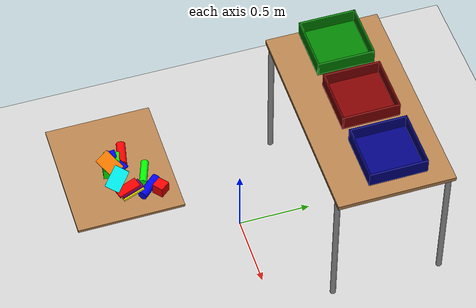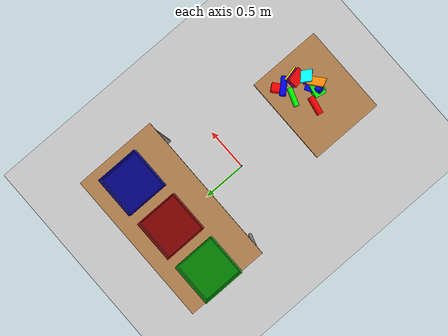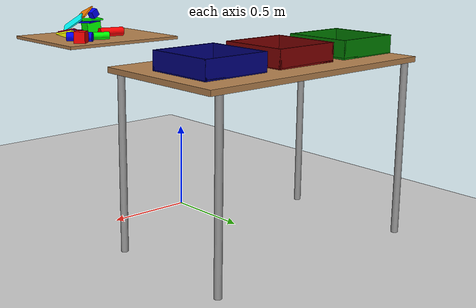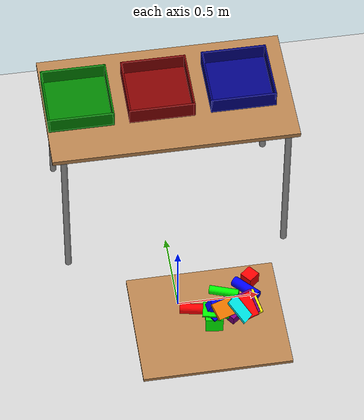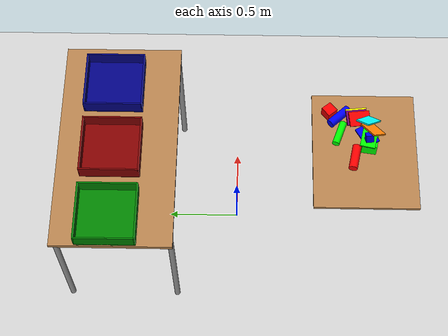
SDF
<sdf version="1.7">
 <world name="default">
  <light name="sun" type="directional">
   <pose>0 0 10 0 -0 0</pose>
   <diffuse>0.8 0.8 0.8 1</diffuse>
   <specular>0.2 0.2 0.2 1</specular>
   <attenuation>
    <range>1000</range>
    <constant>0.9</constant>
    <linear>0.01</linear>
    <quadratic>0.001</quadratic>
   </attenuation>
   <direction>-0.5 0.1 -0.9</direction>
   <spot><inner_angle>0</inner_angle><outer_angle>0</outer_angle><falloff>0</falloff></spot>
  </light>
  <model name="ground_plane">
   <static>1</static>
   <link name="link">
    <collision name="collision">
     <geometry><plane><normal>0 0 1</normal><size>100 100</size></plane></geometry>
     <surface><friction><ode><mu>100</mu><mu2>50</mu2></ode></friction></surface>
    </collision>
    <visual name="visual">
     <cast_shadows>0</cast_shadows>
     <geometry><plane><normal>0 0 1</normal><size>100 100</size></plane></geometry>
     <material>
      <script><uri>file://media/materials/scripts/gazebo.material</uri><name>Gazebo/Grey</name></script>
     </material>
    </visual>
   </link>
  </model>
  <gravity>0 0 -9.8</gravity>
  <magnetic_field>6e-06 2.3e-05 -4.2e-05</magnetic_field>
  <atmosphere type="adiabatic"/>
  <physics type="ode">
   <max_step_size>0.001</max_step_size>
   <real_time_factor>1</real_time_factor>
   <real_time_update_rate>1000</real_time_update_rate>
  </physics>
  <scene><ambient>0.4 0.4 0.4 1</ambient><background>0.7 0.7 0.7 1</background><shadows>1</shadows></scene>
  <audio><device>default</device></audio>
  <spherical_coordinates>
   <surface_model>EARTH_WGS84</surface_model>
   <latitude_deg>0</latitude_deg>
   <longitude_deg>0</longitude_deg>
   <elevation>0</elevation>
   <heading_deg>0</heading_deg>
  </spherical_coordinates>
  <model name="table">
   <static>1</static>
   <link name="link">
    <collision name="surface">
     <pose>0 0 1 0 -0 0</pose>
     <geometry><box><size>1.5 0.8 0.03</size></box></geometry>
     <surface>
      <friction><ode><mu>10</mu><mu2>5</mu2></ode></friction>
      <contact><ode><soft_cfm>0.0001</soft_cfm><soft_erp>0.4</soft_erp><kp>1e+06</kp><kd>10</kd></ode></contact>
     </surface>
    </collision>
    <visual name="visual1">
     <pose>0 0 1 0 -0 0</pose>
     <geometry><box><size>1.5 0.8 0.03</size></box></geometry>
     <material>
      <script><uri>file://media/materials/scripts/gazebo.material</uri><name>Gazebo/Wood</name></script>
     </material>
    </visual>
    <collision name="front_left_leg">
     <pose>0.68 0.38 0.5 0 -0 0</pose>
     <geometry><cylinder><radius>0.02</radius><length>1</length></cylinder></geometry>
    </collision>
    <visual name="front_left_leg">
     <pose>0.68 0.38 0.5 0 -0 0</pose>
     <geometry><cylinder><radius>0.02</radius><length>1</length></cylinder></geometry>
     <material>
      <script><uri>file://media/materials/scripts/gazebo.material</uri><name>Gazebo/Grey</name></script>
     </material>
    </visual>
    <collision name="front_right_leg">
     <pose>0.68 -0.38 0.5 0 -0 0</pose>
     <geometry><cylinder><radius>0.02</radius><length>1</length></cylinder></geometry>
    </collision>
    <visual name="front_right_leg">
     <pose>0.68 -0.38 0.5 0 -0 0</pose>
     <geometry><cylinder><radius>0.02</radius><length>1</length></cylinder></geometry>
     <material>
      <script><uri>file://media/materials/scripts/gazebo.material</uri><name>Gazebo/Grey</name></script>
     </material>
    </visual>
    <collision name="back_right_leg">
     <pose>-0.68 -0.38 0.5 0 -0 0</pose>
     <geometry><cylinder><radius>0.02</radius><length>1</length></cylinder></geometry>
    </collision>
    <visual name="back_right_leg">
     <pose>-0.68 -0.38 0.5 0 -0 0</pose>
     <geometry><cylinder><radius>0.02</radius><length>1</length></cylinder></geometry>
     <material>
      <script><uri>file://media/materials/scripts/gazebo.material</uri><name>Gazebo/Grey</name></script>
     </material>
    </visual>
    <collision name="back_left_leg">
     <pose>-0.68 0.38 0.5 0 -0 0</pose>
     <geometry><cylinder><radius>0.02</radius><length>1</length></cylinder></geometry>
    </collision>
    <visual name="back_left_leg">
     <pose>-0.68 0.38 0.5 0 -0 0</pose>
     <geometry><cylinder><radius>0.02</radius><length>1</length></cylinder></geometry>
     <material>
      <script><uri>file://media/materials/scripts/gazebo.material</uri><name>Gazebo/Grey</name></script>
     </material>
    </visual>
    <inertial>
     <inertia><ixx>1</ixx><ixy>0</ixy><ixz>0</ixz><iyy>1</iyy><iyz>0</iyz><izz>1</izz></inertia>
     <mass>50</mass>
    </inertial>
   </link>
   <pose>0.056083 0.801191 -1.2e-05 0 -0 2.5e-05</pose>
  </model>
  <plugin name="gazebo_link_attacher" filename="libgazebo_link_attacher.so"/>
  <plugin name="gazebo_ros_state" filename="libgazebo_ros_state.so">
   <namespace>/gazebo</namespace>
   <update_rate>100</update_rate>
  </plugin>
  <model name="cube_b">
   <link name="link_2">
    <inertial>
     <mass>2</mass>
     <inertia>
      <ixx>0.00083333</ixx>
      <ixy>0</ixy>
      <ixz>0</ixz>
      <iyy>0.00083333</iyy>
      <iyz>0</iyz>
      <izz>0.00083333</izz>
     </inertia>
    </inertial>
    <visual name="visual">
     <geometry><box><size>0.05 0.05 0.05</size></box></geometry>
     <material>
      <lighting>1</lighting>
      <script><uri>file://media/materials/scripts/gazebo.material</uri><name>Gazebo/Grey</name></script>
      <ambient>0 0 1 1</ambient>
      <diffuse>0 0 1 1</diffuse>
      <specular>0 0 0 1</specular>
      <emissive>0 0 0 1</emissive>
      <shader type="vertex"><normal_map>__default__</normal_map></shader>
     </material>
    </visual>
    <collision name="collision">
     <geometry><box><size>0.05 0.05 0.05</size></box></geometry>
     <surface>
      <friction>
       <ode><mu>0.8</mu><mu2>0.8</mu2><fdir1>0 0 0</fdir1><slip1>0</slip1><slip2>0</slip2></ode>
       <torsional>
        <coefficient>1</coefficient>
        <patch_radius>0</patch_radius>
        <surface_radius>0</surface_radius>
        <use_patch_radius>1</use_patch_radius>
        <ode><slip>0</slip></ode>
       </torsional>
      </friction>
      <bounce><restitution_coefficient>0</restitution_coefficient><threshold>1e+06</threshold></bounce>
      <contact>
       <collide_without_contact>0</collide_without_contact>
       <collide_without_contact_bitmask>1</collide_without_contact_bitmask>
       <collide_bitmask>1</collide_bitmask>
       <ode>
        <soft_cfm>0.0001</soft_cfm>
        <soft_erp>0.4</soft_erp>
        <kp>1e+06</kp>
        <kd>10</kd>
        <max_vel>0.01</max_vel>
        <min_depth>0</min_depth>
       </ode>
      </contact>
     </surface>
    </collision>
   </link>
   <static>0</static>
   <allow_auto_disable>0</allow_auto_disable>
   <pose>0.058084 -0.875418 1.13944 -0.009114 -0.55049 -3.00865</pose>
  </model>
  <model name="cube_g">
   <link name="link_2">
    <inertial>
     <mass>2</mass>
     <inertia>
      <ixx>0.00333333</ixx>
      <iyy>0.00333333</iyy>
      <izz>0.00333333</izz>
      <ixy>0</ixy>
      <ixz>0</ixz>
      <iyz>0</iyz>
     </inertia>
    </inertial>
    <visual name="visual">
     <geometry><box><size>0.1 0.1 0.1</size></box></geometry>
     <material>
      <lighting>1</lighting>
      <script><uri>file://media/materials/scripts/gazebo.material</uri><name>Gazebo/Grey</name></script>
      <ambient>0 1 0 1</ambient>
      <diffuse>0 1 0 1</diffuse>
      <specular>0 0 0 1</specular>
      <emissive>0 0 0 1</emissive>
      <shader type="vertex"><normal_map>__default__</normal_map></shader>
     </material>
    </visual>
    <collision name="collision">
     <geometry><box><size>0.1 0.1 0.1</size></box></geometry>
     <surface>
      <friction>
       <ode><mu>0.8</mu><mu2>0.8</mu2><fdir1>0 0 0</fdir1><slip1>0</slip1><slip2>0</slip2></ode>
       <torsional>
        <coefficient>1</coefficient>
        <patch_radius>0</patch_radius>
        <surface_radius>0</surface_radius>
        <use_patch_radius>1</use_patch_radius>
        <ode><slip>0</slip></ode>
       </torsional>
      </friction>
      <bounce><restitution_coefficient>0</restitution_coefficient><threshold>1e+06</threshold></bounce>
      <contact>
       <collide_without_contact>0</collide_without_contact>
       <collide_without_contact_bitmask>1</collide_without_contact_bitmask>
       <collide_bitmask>1</collide_bitmask>
       <ode>
        <soft_cfm>0.0001</soft_cfm>
        <soft_erp>0.4</soft_erp>
        <kp>1e+06</kp>
        <kd>10</kd>
        <max_vel>0.01</max_vel>
        <min_depth>0</min_depth>
       </ode>
      </contact>
     </surface>
    </collision>
   </link>
   <static>0</static>
   <allow_auto_disable>0</allow_auto_disable>
   <pose>0.068757 -0.890367 1.03563 0.000934 -0.000773 -0.146609</pose>
  </model>
  <model name="cube_r">
   <link name="link_2">
    <inertial>
     <mass>2</mass>
     <inertia>
      <ixx>0.001875</ixx>
      <ixy>0</ixy>
      <ixz>0</ixz>
      <iyy>0.001875</iyy>
      <iyz>0</iyz>
      <izz>0.001875</izz>
     </inertia>
    </inertial>
    <visual name="visual">
     <geometry><box><size>0.075 0.075 0.075</size></box></geometry>
     <material>
      <lighting>1</lighting>
      <script><uri>file://media/materials/scripts/gazebo.material</uri><name>Gazebo/Grey</name></script>
      <ambient>1 0 0 1</ambient>
      <diffuse>1 0 0 1</diffuse>
      <specular>0 0 0 1</specular>
      <emissive>0 0 0 1</emissive>
      <shader type="vertex"><normal_map>__default__</normal_map></shader>
     </material>
    </visual>
    <collision name="collision">
     <geometry><box><size>0.075 0.075 0.075</size></box></geometry>
     <surface>
      <friction>
       <ode><mu>0.8</mu><mu2>0.8</mu2><fdir1>0 0 0</fdir1><slip1>0</slip1><slip2>0</slip2></ode>
       <torsional>
        <coefficient>1</coefficient>
        <patch_radius>0</patch_radius>
        <surface_radius>0</surface_radius>
        <use_patch_radius>1</use_patch_radius>
        <ode><slip>0</slip></ode>
       </torsional>
      </friction>
      <bounce><restitution_coefficient>0</restitution_coefficient><threshold>1e+06</threshold></bounce>
      <contact>
       <collide_without_contact>0</collide_without_contact>
       <collide_without_contact_bitmask>1</collide_without_contact_bitmask>
       <collide_bitmask>1</collide_bitmask>
       <ode>
        <soft_cfm>0.0001</soft_cfm>
        <soft_erp>0.4</soft_erp>
        <kp>1e+06</kp>
        <kd>10</kd>
        <max_vel>0.01</max_vel>
        <min_depth>0</min_depth>
       </ode>
      </contact>
     </surface>
    </collision>
   </link>
   <static>0</static>
   <allow_auto_disable>0</allow_auto_disable>
   <pose>0.317185 -0.625575 1.02465 1.56904 -0.003902 0.686267</pose>
  </model>
  <model name="cylinder_r">
   <link name="link_0">
    <inertial>
     <mass>0.2</mass>
     <inertia>
      <ixx>0.0005267</ixx>
      <ixy>0</ixy>
      <ixz>0</ixz>
      <iyy>0.0005267</iyy>
      <iyz>0</iyz>
      <izz>9e-05</izz>
     </inertia>
    </inertial>
    <visual name="visual">
     <geometry><cylinder><radius>0.03</radius><length>0.17</length></cylinder></geometry>
     <material>
      <lighting>1</lighting>
      <script><uri>file://media/materials/scripts/gazebo.material</uri><name>Gazebo/Grey</name></script>
      <ambient>1 0 0 1</ambient>
      <diffuse>1 0 0 1</diffuse>
      <specular>0 0 0 1</specular>
      <emissive>0 0 0 1</emissive>
      <shader type="vertex"><normal_map>__default__</normal_map></shader>
     </material>
    </visual>
    <collision name="collision">
     <geometry><cylinder><radius>0.03</radius><length>0.17</length></cylinder></geometry>
     <surface>
      <friction>
       <ode><mu>0.5</mu><mu2>0.5</mu2><fdir1>0 0 0</fdir1><slip1>0</slip1><slip2>0</slip2></ode>
       <torsional>
        <coefficient>1</coefficient>
        <patch_radius>0</patch_radius>
        <surface_radius>0</surface_radius>
        <use_patch_radius>1</use_patch_radius>
        <ode><slip>0</slip></ode>
       </torsional>
      </friction>
      <bounce><restitution_coefficient>0</restitution_coefficient><threshold>1e+06</threshold></bounce>
      <contact>
       <collide_without_contact>0</collide_without_contact>
       <collide_without_contact_bitmask>1</collide_without_contact_bitmask>
       <collide_bitmask>1</collide_bitmask>
       <ode>
        <soft_cfm>0.0001</soft_cfm>
        <soft_erp>0.4</soft_erp>
        <kp>1e+06</kp>
        <kd>10</kd>
        <max_vel>0.01</max_vel>
        <min_depth>0</min_depth>
       </ode>
      </contact>
     </surface>
    </collision>
   </link>
   <static>0</static>
   <allow_auto_disable>0</allow_auto_disable>
   <pose>-0.027271 -0.791052 1.01554 1.58234 -1.23015 -1.77818</pose>
  </model>
  <model name="cylinder_b">
   <link name="link_0">
    <inertial>
     <mass>0.2</mass>
     <inertia>
      <ixx>0.0005267</ixx>
      <ixy>0</ixy>
      <ixz>0</ixz>
      <iyy>0.0005267</iyy>
      <iyz>0</iyz>
      <izz>9e-05</izz>
     </inertia>
    </inertial>
    <visual name="visual">
     <geometry><cylinder><radius>0.03</radius><length>0.17</length></cylinder></geometry>
     <material>
      <lighting>1</lighting>
      <ambient>0 0 1 1</ambient>
      <diffuse>0 0 1 1</diffuse>
      <specular>0.1 0.1 0.1 1</specular>
      <emissive>0 0 0 1</emissive>
      <shader type="vertex"><normal_map>__default__</normal_map></shader>
     </material>
    </visual>
    <collision name="collision">
     <geometry><cylinder><radius>0.03</radius><length>0.17</length></cylinder></geometry>
     <surface>
      <friction>
       <ode><mu>0.4</mu><mu2>0.4</mu2><fdir1>0 0 0</fdir1><slip1>0</slip1><slip2>0</slip2></ode>
       <torsional>
        <coefficient>1</coefficient>
        <patch_radius>0</patch_radius>
        <surface_radius>0</surface_radius>
        <use_patch_radius>1</use_patch_radius>
        <ode><slip>0</slip></ode>
       </torsional>
      </friction>
      <bounce><restitution_coefficient>0</restitution_coefficient><threshold>1e+06</threshold></bounce>
      <contact>
       <collide_without_contact>0</collide_without_contact>
       <collide_without_contact_bitmask>1</collide_without_contact_bitmask>
       <collide_bitmask>1</collide_bitmask>
       <ode>
        <soft_cfm>0.0001</soft_cfm>
        <soft_erp>0.4</soft_erp>
        <kp>1e+06</kp>
        <kd>10</kd>
        <max_vel>0.01</max_vel>
        <min_depth>0</min_depth>
       </ode>
      </contact>
     </surface>
    </collision>
   </link>
   <static>0</static>
   <allow_auto_disable>0</allow_auto_disable>
   <pose>0.284132 -0.692404 1.01689 -1.56914 -0.139838 -2.39607</pose>
  </model>
  <model name="cylinder_g">
   <link name="link_0">
    <inertial>
     <mass>0.2</mass>
     <inertia>
      <ixx>0.0005129</ixx>
      <ixy>0</ixy>
      <ixz>0</ixz>
      <iyy>0.0005129</iyy>
      <iyz>0</iyz>
      <izz>6.25e-05</izz>
     </inertia>
    </inertial>
    <visual name="visual">
     <geometry><cylinder><radius>0.025</radius><length>0.17</length></cylinder></geometry>
     <material>
      <lighting>1</lighting>
      <ambient>0 1 0 1</ambient>
      <diffuse>0 1 0 1</diffuse>
      <specular>0.1 0.1 0.1 1</specular>
      <emissive>0 0 0 1</emissive>
      <shader type="vertex"><normal_map>__default__</normal_map></shader>
     </material>
    </visual>
    <collision name="collision">
     <geometry><cylinder><radius>0.025</radius><length>0.17</length></cylinder></geometry>
     <surface>
      <friction>
       <ode><mu>0.5</mu><mu2>0.5</mu2><fdir1>0 0 0</fdir1><slip1>0</slip1><slip2>0</slip2></ode>
       <torsional>
        <coefficient>1</coefficient>
        <patch_radius>0</patch_radius>
        <surface_radius>0</surface_radius>
        <use_patch_radius>1</use_patch_radius>
        <ode><slip>0</slip></ode>
       </torsional>
      </friction>
      <bounce><restitution_coefficient>0</restitution_coefficient><threshold>1e+06</threshold></bounce>
      <contact>
       <collide_without_contact>0</collide_without_contact>
       <collide_without_contact_bitmask>1</collide_without_contact_bitmask>
       <collide_bitmask>1</collide_bitmask>
       <ode>
        <soft_cfm>0.0001</soft_cfm>
        <soft_erp>0.4</soft_erp>
        <kp>1e+06</kp>
        <kd>10</kd>
        <max_vel>0.01</max_vel>
        <min_depth>0</min_depth>
       </ode>
      </contact>
     </surface>
    </collision>
   </link>
   <static>0</static>
   <allow_auto_disable>0</allow_auto_disable>
   <pose>0.156876 -0.692772 1.01141 1.56599 -0.742867 1.23365</pose>
  </model>
  <model name="cuboid_r">
   <link name="link">
    <inertial>
     <mass>2</mass>
     <inertia>
      <ixx>0.001683</ixx>
      <iyy>0.003767</iyy>
      <izz>0.005417</izz>
      <ixy>0</ixy>
      <ixz>0</ixz>
      <iyz>0</iyz>
     </inertia>
    </inertial>
    <visual name="visual">
     <geometry><box><size>0.15 0.1 0.01</size></box></geometry>
     <material><ambient>1 0 0 1</ambient><diffuse>1 0 0 1</diffuse><specular>0.1 0.1 0.1 1</specular></material>
    </visual>
    <collision name="collision">
     <geometry><box><size>0.15 0.1 0.01</size></box></geometry>
     <surface>
      <friction>
       <ode><mu>0.6</mu><mu2>0.6</mu2><fdir1>0 0 0</fdir1><slip1>0</slip1><slip2>0</slip2></ode>
       <torsional>
        <coefficient>1</coefficient>
        <patch_radius>0</patch_radius>
        <surface_radius>0</surface_radius>
        <use_patch_radius>1</use_patch_radius>
        <ode><slip>0</slip></ode>
       </torsional>
      </friction>
      <bounce><restitution_coefficient>0</restitution_coefficient><threshold>1e+06</threshold></bounce>
      <contact>
       <collide_without_contact>0</collide_without_contact>
       <collide_without_contact_bitmask>1</collide_without_contact_bitmask>
       <collide_bitmask>1</collide_bitmask>
       <ode>
        <soft_cfm>0.0001</soft_cfm>
        <soft_erp>0.4</soft_erp>
        <kp>1e+06</kp>
        <kd>10</kd>
        <max_vel>0.01</max_vel>
        <min_depth>0</min_depth>
       </ode>
      </contact>
     </surface>
    </collision>
   </link>
   <static>0</static>
   <allow_auto_disable>0</allow_auto_disable>
   <pose>0.262492 -0.829601 1.03012 2.78633 -0.203152 1.79583</pose>
  </model>
  <model name="cuboid_g">
   <link name="link">
    <inertial>
     <mass>2</mass>
     <inertia>
      <ixx>0.001683</ixx>
      <iyy>0.003767</iyy>
      <izz>0.005417</izz>
      <ixy>0</ixy>
      <ixz>0</ixz>
      <iyz>0</iyz>
     </inertia>
    </inertial>
    <visual name="visual">
     <geometry><box><size>0.15 0.1 0.01</size></box></geometry>
     <material><ambient>0 1 0 1</ambient><diffuse>0 1 0 1</diffuse><specular>0.1 0.1 0.1 1</specular></material>
    </visual>
    <collision name="collision">
     <geometry><box><size>0.15 0.1 0.01</size></box></geometry>
     <surface>
      <friction>
       <ode><mu>0.6</mu><mu2>0.6</mu2><fdir1>0 0 0</fdir1><slip1>0</slip1><slip2>0</slip2></ode>
       <torsional>
        <coefficient>1</coefficient>
        <patch_radius>0</patch_radius>
        <surface_radius>0</surface_radius>
        <use_patch_radius>1</use_patch_radius>
        <ode><slip>0</slip></ode>
       </torsional>
      </friction>
      <bounce><restitution_coefficient>0</restitution_coefficient><threshold>1e+06</threshold></bounce>
      <contact>
       <collide_without_contact>0</collide_without_contact>
       <collide_without_contact_bitmask>1</collide_without_contact_bitmask>
       <collide_bitmask>1</collide_bitmask>
       <ode>
        <soft_cfm>0.0001</soft_cfm>
        <soft_erp>0.4</soft_erp>
        <kp>1e+06</kp>
        <kd>10</kd>
        <max_vel>0.01</max_vel>
        <min_depth>0</min_depth>
       </ode>
      </contact>
     </surface>
    </collision>
   </link>
   <static>0</static>
   <allow_auto_disable>0</allow_auto_disable>
   <pose>0.079682 -0.880348 1.10023 -0.001204 0.006329 -0.216461</pose>
  </model>
  <model name="cuboid_b">
   <link name="link">
    <inertial>
     <mass>2</mass>
     <inertia>
      <ixx>0.001683</ixx>
      <iyy>0.003767</iyy>
      <izz>0.005417</izz>
      <ixy>0</ixy>
      <ixz>0</ixz>
      <iyz>0</iyz>
     </inertia>
    </inertial>
    <visual name="visual">
     <geometry><box><size>0.15 0.1 0.01</size></box></geometry>
     <material><ambient>0 0 1 1</ambient><diffuse>0 0 1 1</diffuse><specular>0.1 0.1 0.1 1</specular></material>
    </visual>
    <collision name="collision">
     <geometry><box><size>0.15 0.1 0.01</size></box></geometry>
     <surface>
      <friction>
       <ode><mu>0.6</mu><mu2>0.6</mu2><fdir1>0 0 0</fdir1><slip1>0</slip1><slip2>0</slip2></ode>
       <torsional>
        <coefficient>1</coefficient>
        <patch_radius>0</patch_radius>
        <surface_radius>0</surface_radius>
        <use_patch_radius>1</use_patch_radius>
        <ode><slip>0</slip></ode>
       </torsional>
      </friction>
      <bounce><restitution_coefficient>0</restitution_coefficient><threshold>1e+06</threshold></bounce>
      <contact>
       <collide_without_contact>0</collide_without_contact>
       <collide_without_contact_bitmask>1</collide_without_contact_bitmask>
       <collide_bitmask>1</collide_bitmask>
       <ode>
        <soft_cfm>0.0001</soft_cfm>
        <soft_erp>0.4</soft_erp>
        <kp>1e+06</kp>
        <kd>10</kd>
        <max_vel>0.01</max_vel>
        <min_depth>0</min_depth>
       </ode>
      </contact>
     </surface>
    </collision>
   </link>
   <static>0</static>
   <allow_auto_disable>0</allow_auto_disable>
   <pose>0.100014 -0.869135 1.09022 0.003208 0.006224 0.518969</pose>
  </model>
  <model name="cuboid_purple">
   <link name="link">
    <inertial>
     <mass>2</mass>
     <inertia>
      <ixx>0.001683</ixx>
      <iyy>0.003767</iyy>
      <izz>0.005417</izz>
      <ixy>0</ixy>
      <ixz>0</ixz>
      <iyz>0</iyz>
     </inertia>
    </inertial>
    <visual name="visual">
     <geometry><box><size>0.15 0.1 0.01</size></box></geometry>
     <material>
      <ambient>0.5 0 0.5 1</ambient>
      <diffuse>0.5 0 0.5 1</diffuse>
      <specular>0.1 0.1 0.1 1</specular>
     </material>
    </visual>
    <collision name="collision">
     <geometry><box><size>0.15 0.1 0.01</size></box></geometry>
     <surface>
      <friction>
       <ode><mu>0.6</mu><mu2>0.6</mu2><fdir1>0 0 0</fdir1><slip1>0</slip1><slip2>0</slip2></ode>
       <torsional>
        <coefficient>1</coefficient>
        <patch_radius>0</patch_radius>
        <surface_radius>0</surface_radius>
        <use_patch_radius>1</use_patch_radius>
        <ode><slip>0</slip></ode>
       </torsional>
      </friction>
      <bounce><restitution_coefficient>0</restitution_coefficient><threshold>1e+06</threshold></bounce>
      <contact>
       <collide_without_contact>0</collide_without_contact>
       <collide_without_contact_bitmask>1</collide_without_contact_bitmask>
       <collide_bitmask>1</collide_bitmask>
       <ode>
        <soft_cfm>0.0001</soft_cfm>
        <soft_erp>0.4</soft_erp>
        <kp>1e+06</kp>
        <kd>10</kd>
        <max_vel>0.01</max_vel>
        <min_depth>0</min_depth>
       </ode>
      </contact>
     </surface>
    </collision>
   </link>
   <static>0</static>
   <allow_auto_disable>0</allow_auto_disable>
   <pose>0.273358 -0.811331 1.02807 -2.7864 0.20153 -1.34423</pose>
  </model>
  <model name="cuboid_orange">
   <link name="link">
    <inertial>
     <mass>2</mass>
     <inertia>
      <ixx>0.001683</ixx>
      <iyy>0.003767</iyy>
      <izz>0.005417</izz>
      <ixy>0</ixy>
      <ixz>0</ixz>
      <iyz>0</iyz>
     </inertia>
    </inertial>
    <visual name="visual">
     <geometry><box><size>0.15 0.1 0.01</size></box></geometry>
     <material>
      <ambient>1 0.5 0 1</ambient>
      <diffuse>1 0.5 0 1</diffuse>
      <specular>0.1 0.1 0.1 1</specular>
     </material>
    </visual>
    <collision name="collision">
     <geometry><box><size>0.15 0.1 0.01</size></box></geometry>
     <surface>
      <friction>
       <ode><mu>0.6</mu><mu2>0.6</mu2><fdir1>0 0 0</fdir1><slip1>0</slip1><slip2>0</slip2></ode>
       <torsional>
        <coefficient>1</coefficient>
        <patch_radius>0</patch_radius>
        <surface_radius>0</surface_radius>
        <use_patch_radius>1</use_patch_radius>
        <ode><slip>0</slip></ode>
       </torsional>
      </friction>
      <bounce><restitution_coefficient>0</restitution_coefficient><threshold>1e+06</threshold></bounce>
      <contact>
       <collide_without_contact>0</collide_without_contact>
       <collide_without_contact_bitmask>1</collide_without_contact_bitmask>
       <collide_bitmask>1</collide_bitmask>
       <ode>
        <soft_cfm>0.0001</soft_cfm>
        <soft_erp>0.4</soft_erp>
        <kp>1e+06</kp>
        <kd>10</kd>
        <max_vel>0.01</max_vel>
        <min_depth>0</min_depth>
       </ode>
      </contact>
     </surface>
    </collision>
   </link>
   <static>0</static>
   <allow_auto_disable>0</allow_auto_disable>
   <pose>0.121245 -0.903358 1.13461 -0.490455 -0.383514 -2.55367</pose>
  </model>
  <model name="cuboid_yellow">
   <link name="link">
    <inertial>
     <mass>2</mass>
     <inertia>
      <ixx>0.001683</ixx>
      <iyy>0.003767</iyy>
      <izz>0.005417</izz>
      <ixy>0</ixy>
      <ixz>0</ixz>
      <iyz>0</iyz>
     </inertia>
    </inertial>
    <visual name="visual">
     <geometry><box><size>0.15 0.1 0.01</size></box></geometry>
     <material><ambient>1 1 0 1</ambient><diffuse>1 1 0 1</diffuse><specular>0.1 0.1 0.1 1</specular></material>
    </visual>
    <collision name="collision">
     <geometry><box><size>0.15 0.1 0.01</size></box></geometry>
     <surface>
      <friction>
       <ode><mu>0.6</mu><mu2>0.6</mu2><fdir1>0 0 0</fdir1><slip1>0</slip1><slip2>0</slip2></ode>
       <torsional>
        <coefficient>1</coefficient>
        <patch_radius>0</patch_radius>
        <surface_radius>0</surface_radius>
        <use_patch_radius>1</use_patch_radius>
        <ode><slip>0</slip></ode>
       </torsional>
      </friction>
      <bounce><restitution_coefficient>0</restitution_coefficient><threshold>1e+06</threshold></bounce>
      <contact>
       <collide_without_contact>0</collide_without_contact>
       <collide_without_contact_bitmask>1</collide_without_contact_bitmask>
       <collide_bitmask>1</collide_bitmask>
       <ode>
        <soft_cfm>0.0001</soft_cfm>
        <soft_erp>0.4</soft_erp>
        <kp>1e+06</kp>
        <kd>10</kd>
        <max_vel>0.01</max_vel>
        <min_depth>0</min_depth>
       </ode>
      </contact>
     </surface>
    </collision>
   </link>
   <static>0</static>
   <allow_auto_disable>0</allow_auto_disable>
   <pose>0.289575 -0.810277 1.02288 2.78856 -0.201466 1.79443</pose>
  </model>
  <model name="cuboid_cyan">
   <link name="link">
    <inertial>
     <mass>2</mass>
     <inertia>
      <ixx>0.001683</ixx>
      <iyy>0.003767</iyy>
      <izz>0.005417</izz>
      <ixy>0</ixy>
      <ixz>0</ixz>
      <iyz>0</iyz>
     </inertia>
    </inertial>
    <visual name="visual">
     <geometry><box><size>0.15 0.1 0.01</size></box></geometry>
     <material><ambient>0 1 1 1</ambient><diffuse>0 1 1 1</diffuse><specular>0.1 0.1 0.1 1</specular></material>
    </visual>
    <collision name="collision">
     <geometry><box><size>0.15 0.1 0.01</size></box></geometry>
     <surface>
      <friction>
       <ode><mu>0.6</mu><mu2>0.6</mu2><fdir1>0 0 0</fdir1><slip1>0</slip1><slip2>0</slip2></ode>
       <torsional>
        <coefficient>1</coefficient>
        <patch_radius>0</patch_radius>
        <surface_radius>0</surface_radius>
        <use_patch_radius>1</use_patch_radius>
        <ode><slip>0</slip></ode>
       </torsional>
      </friction>
      <bounce><restitution_coefficient>0</restitution_coefficient><threshold>1e+06</threshold></bounce>
      <contact>
       <collide_without_contact>0</collide_without_contact>
       <collide_without_contact_bitmask>1</collide_without_contact_bitmask>
       <collide_bitmask>1</collide_bitmask>
       <ode>
        <soft_cfm>0.0001</soft_cfm>
        <soft_erp>0.4</soft_erp>
        <kp>1e+06</kp>
        <kd>10</kd>
        <max_vel>0.01</max_vel>
        <min_depth>0</min_depth>
       </ode>
      </contact>
     </surface>
    </collision>
   </link>
   <static>0</static>
   <allow_auto_disable>0</allow_auto_disable>
   <pose>0.215193 -0.883008 1.08586 0.412614 -0.597888 2.27345</pose>
  </model>
  <model name="workspace">
   <link name="link">
    <inertial>
     <mass>100</mass>
     <inertia><ixx>6.02417</ixx><ixy>0</ixy><ixz>0</ixz><iyy>4.08667</iyy><iyz>0</iyz><izz>10.1042</izz></inertia>
    </inertial>
    <visual name="visual">
     <geometry><box><size>0.7 0.85 0.02</size></box></geometry>
     <material>
      <script><name>Gazebo/Wood</name><uri>file://media/materials/scripts/gazebo.material</uri></script>
      <shader type="pixel"/>
     </material>
    </visual>
    <collision name="collision">
     <geometry><box><size>0.7 0.85 0.02</size></box></geometry>
     <surface>
      <friction>
       <ode><mu>100</mu><mu2>50</mu2><fdir1>0 0 0</fdir1><slip1>0</slip1><slip2>0</slip2></ode>
       <torsional>
        <coefficient>1</coefficient>
        <patch_radius>0</patch_radius>
        <surface_radius>0</surface_radius>
        <use_patch_radius>1</use_patch_radius>
        <ode><slip>0</slip></ode>
       </torsional>
      </friction>
      <bounce><restitution_coefficient>0</restitution_coefficient><threshold>1e+06</threshold></bounce>
      <contact>
       <collide_without_contact>0</collide_without_contact>
       <collide_without_contact_bitmask>1</collide_without_contact_bitmask>
       <collide_bitmask>1</collide_bitmask>
       <ode>
        <soft_cfm>0.0001</soft_cfm>
        <soft_erp>0.2</soft_erp>
        <kp>1e+13</kp>
        <kd>10</kd>
        <max_vel>0.01</max_vel>
        <min_depth>0</min_depth>
       </ode>
       <bullet>
        <split_impulse>1</split_impulse>
        <split_impulse_penetration_threshold>-0.01</split_impulse_penetration_threshold>
        <soft_cfm>0</soft_cfm>
        <soft_erp>0.2</soft_erp>
        <kp>1e+13</kp>
        <kd>1</kd>
       </bullet>
      </contact>
     </surface>
    </collision>
   </link>
   <static>1</static>
   <pose>0.0416 -0.859914 0.975746 -0.004154 -0.001127 1.57039</pose>
  </model>
  <model name="tray_red">
   <static>1</static>
   <link name="link">
    <collision name="base_collision">
     <pose>0 0 0.01 0 -0 0</pose>
     <geometry><box><size>0.4 0.4 0.01</size></box></geometry>
     <surface><contact><ode><mu>50</mu><mu2>50</mu2></ode></contact></surface>
    </collision>
    <visual name="base_visual">
     <pose>0 0 0.01 0 -0 0</pose>
     <geometry><box><size>0.4 0.4 0.01</size></box></geometry>
     <material>
      <ambient>1 0 0 1</ambient>
      <diffuse>0.5 0 0 1</diffuse>
      <specular>0 0 0 1</specular>
      <emissive>0 0 0 1</emissive>
      <shininess>100</shininess>
     </material>
    </visual>
    <collision name="front_collision">
     <pose>0 0.195 0.06 0 -0 0</pose>
     <geometry><box><size>0.4 0.01 0.1</size></box></geometry>
    </collision>
    <visual name="front_visual">
     <pose>0 0.195 0.06 0 -0 0</pose>
     <geometry><box><size>0.4 0.01 0.1</size></box></geometry>
     <material>
      <ambient>1 0 0 1</ambient>
      <diffuse>0.5 0 0 1</diffuse>
      <specular>0 0 0 1</specular>
      <emissive>0 0 0 1</emissive>
     </material>
    </visual>
    <collision name="back_collision">
     <pose>0 -0.195 0.06 0 -0 0</pose>
     <geometry><box><size>0.4 0.01 0.1</size></box></geometry>
    </collision>
    <visual name="back_visual">
     <pose>0 -0.195 0.06 0 -0 0</pose>
     <geometry><box><size>0.4 0.01 0.1</size></box></geometry>
     <material>
      <ambient>1 0 0 1</ambient>
      <diffuse>0.5 0 0 1</diffuse>
      <specular>0 0 0 1</specular>
      <emissive>0 0 0 1</emissive>
     </material>
    </visual>
    <collision name="left_collision">
     <pose>0.195 0 0.06 0 -0 0</pose>
     <geometry><box><size>0.01 0.4 0.1</size></box></geometry>
    </collision>
    <visual name="left_visual">
     <pose>0.195 0 0.06 0 -0 0</pose>
     <geometry><box><size>0.01 0.4 0.1</size></box></geometry>
     <material>
      <ambient>1 0 0 1</ambient>
      <diffuse>0.5 0 0 1</diffuse>
      <specular>0 0 0 1</specular>
      <emissive>0 0 0 1</emissive>
     </material>
    </visual>
    <collision name="right_collision">
     <pose>-0.195 0 0.06 0 -0 0</pose>
     <geometry><box><size>0.01 0.4 0.1</size></box></geometry>
    </collision>
    <visual name="right_visual">
     <pose>-0.195 0 0.06 0 -0 0</pose>
     <geometry><box><size>0.01 0.4 0.1</size></box></geometry>
     <material>
      <ambient>1 0 0 1</ambient>
      <diffuse>0.5 0 0 1</diffuse>
      <specular>0 0 0 1</specular>
      <emissive>0 0 0 1</emissive>
     </material>
    </visual>
    <inertial>
     <inertia><ixx>1</ixx><ixy>0</ixy><ixz>0</ixz><iyy>1</iyy><iyz>0</iyz><izz>1</izz></inertia>
     <mass>1</mass>
    </inertial>
   </link>
   <pose>0.003367 0.836815 1.00999 0 -0 0</pose>
  </model>
  <model name="tray_green">
   <static>1</static>
   <link name="link">
    <collision name="base_collision">
     <pose>0 0 0.01 0 -0 0</pose>
     <geometry><box><size>0.4 0.4 0.01</size></box></geometry>
     <surface><contact><ode><mu>50</mu><mu2>50</mu2></ode></contact></surface>
    </collision>
    <visual name="base_visual">
     <pose>0 0 0.01 0 -0 0</pose>
     <geometry><box><size>0.4 0.4 0.01</size></box></geometry>
     <material><ambient>0 1 0 1</ambient><diffuse>0 0.5 0 1</diffuse></material>
    </visual>
    <collision name="front_collision">
     <pose>0 0.195 0.06 0 -0 0</pose>
     <geometry><box><size>0.4 0.01 0.1</size></box></geometry>
    </collision>
    <visual name="front_visual">
     <pose>0 0.195 0.06 0 -0 0</pose>
     <geometry><box><size>0.4 0.01 0.1</size></box></geometry>
     <material><ambient>0 1 0 1</ambient><diffuse>0 0.5 0 1</diffuse></material>
    </visual>
    <collision name="back_collision">
     <pose>0 -0.195 0.06 0 -0 0</pose>
     <geometry><box><size>0.4 0.01 0.1</size></box></geometry>
    </collision>
    <visual name="back_visual">
     <pose>0 -0.195 0.06 0 -0 0</pose>
     <geometry><box><size>0.4 0.01 0.1</size></box></geometry>
     <material><ambient>0 1 0 1</ambient><diffuse>0 0.5 0 1</diffuse></material>
    </visual>
    <collision name="left_collision">
     <pose>0.195 0 0.06 0 -0 0</pose>
     <geometry><box><size>0.01 0.4 0.1</size></box></geometry>
    </collision>
    <visual name="left_visual">
     <pose>0.195 0 0.06 0 -0 0</pose>
     <geometry><box><size>0.01 0.4 0.1</size></box></geometry>
     <material><ambient>0 1 0 1</ambient><diffuse>0 0.5 0 1</diffuse></material>
    </visual>
    <collision name="right_collision">
     <pose>-0.195 0 0.06 0 -0 0</pose>
     <geometry><box><size>0.01 0.4 0.1</size></box></geometry>
    </collision>
    <visual name="right_visual">
     <pose>-0.195 0 0.06 0 -0 0</pose>
     <geometry><box><size>0.01 0.4 0.1</size></box></geometry>
     <material><ambient>0 1 0 1</ambient><diffuse>0 0.5 0 1</diffuse></material>
    </visual>
    <inertial>
     <inertia><ixx>1</ixx><ixy>0</ixy><ixz>0</ixz><iyy>1</iyy><iyz>0</iyz><izz>1</izz></inertia>
     <mass>1</mass>
    </inertial>
   </link>
   <pose>-0.487214 0.834657 1.00999 0 -0 0</pose>
  </model>
  <model name="tray_blue">
   <static>1</static>
   <link name="link">
    <collision name="base_collision">
     <pose>0 0 0.01 0 -0 0</pose>
     <geometry><box><size>0.4 0.4 0.01</size></box></geometry>
     <surface><contact><ode><mu>50</mu><mu2>50</mu2></ode></contact></surface>
    </collision>
    <visual name="base_visual">
     <pose>0 0 0.01 0 -0 0</pose>
     <geometry><box><size>0.4 0.4 0.01</size></box></geometry>
     <material><ambient>0 0 1 1</ambient><diffuse>0 0 0.5 1</diffuse></material>
    </visual>
    <collision name="front_collision">
     <pose>0 0.195 0.06 0 -0 0</pose>
     <geometry><box><size>0.4 0.01 0.1</size></box></geometry>
    </collision>
    <visual name="front_visual">
     <pose>0 0.195 0.06 0 -0 0</pose>
     <geometry><box><size>0.4 0.01 0.1</size></box></geometry>
     <material><ambient>0 0 1 1</ambient><diffuse>0 0 0.5 1</diffuse></material>
    </visual>
    <collision name="back_collision">
     <pose>0 -0.195 0.06 0 -0 0</pose>
     <geometry><box><size>0.4 0.01 0.1</size></box></geometry>
    </collision>
    <visual name="back_visual">
     <pose>0 -0.195 0.06 0 -0 0</pose>
     <geometry><box><size>0.4 0.01 0.1</size></box></geometry>
     <material><ambient>0 0 1 1</ambient><diffuse>0 0 0.5 1</diffuse></material>
    </visual>
    <collision name="left_collision">
     <pose>0.195 0 0.06 0 -0 0</pose>
     <geometry><box><size>0.01 0.4 0.1</size></box></geometry>
    </collision>
    <visual name="left_visual">
     <pose>0.195 0 0.06 0 -0 0</pose>
     <geometry><box><size>0.01 0.4 0.1</size></box></geometry>
     <material><ambient>0 0 1 1</ambient><diffuse>0 0 0.5 1</diffuse></material>
    </visual>
    <collision name="right_collision">
     <pose>-0.195 0 0.06 0 -0 0</pose>
     <geometry><box><size>0.01 0.4 0.1</size></box></geometry>
    </collision>
    <visual name="right_visual">
     <pose>-0.195 0 0.06 0 -0 0</pose>
     <geometry><box><size>0.01 0.4 0.1</size></box></geometry>
     <material><ambient>0 0 1 1</ambient><diffuse>0 0 0.5 1</diffuse></material>
    </visual>
    <inertial>
     <inertia><ixx>1</ixx><ixy>0</ixy><ixz>0</ixz><iyy>1</iyy><iyz>0</iyz><izz>1</izz></inertia>
     <mass>1</mass>
    </inertial>
   </link>
   <pose>0.500589 0.844197 1.00999 0 -0 0</pose>
  </model>
  <model name="cube_purple">
   <link name="link_2">
    <inertial>
     <mass>2</mass>
     <inertia>
      <ixx>0.00083333</ixx>
      <ixy>0</ixy>
      <ixz>0</ixz>
      <iyy>0.00083333</iyy>
      <iyz>0</iyz>
      <izz>0.00083333</izz>
     </inertia>
    </inertial>
    <visual name="visual">
     <geometry><box><size>0.05 0.05 0.05</size></box></geometry>
     <material>
      <lighting>1</lighting>
      <script><uri>file://media/materials/scripts/gazebo.material</uri><name>Gazebo/Grey</name></script>
      <ambient>0.5 0 0.5 1</ambient>
      <diffuse>0.5 0 0.5 1</diffuse>
      <specular>0.1 0.1 0.1 1</specular>
      <emissive>0 0 0 1</emissive>
      <shader type="vertex"><normal_map>__default__</normal_map></shader>
     </material>
    </visual>
    <collision name="collision">
     <geometry><box><size>0.05 0.05 0.05</size></box></geometry>
     <surface>
      <friction>
       <ode><mu>0.8</mu><mu2>0.8</mu2><fdir1>0 0 0</fdir1><slip1>0</slip1><slip2>0</slip2></ode>
       <torsional>
        <coefficient>1</coefficient>
        <patch_radius>0</patch_radius>
        <surface_radius>0</surface_radius>
        <use_patch_radius>1</use_patch_radius>
        <ode><slip>0</slip></ode>
       </torsional>
      </friction>
      <bounce><restitution_coefficient>0</restitution_coefficient><threshold>1e+06</threshold></bounce>
      <contact>
       <collide_without_contact>0</collide_without_contact>
       <collide_without_contact_bitmask>1</collide_without_contact_bitmask>
       <collide_bitmask>1</collide_bitmask>
       <ode>
        <soft_cfm>0.0001</soft_cfm>
        <soft_erp>0.4</soft_erp>
        <kp>1e+06</kp>
        <kd>10</kd>
        <max_vel>0.01</max_vel>
        <min_depth>0</min_depth>
       </ode>
      </contact>
     </surface>
    </collision>
   </link>
   <static>0</static>
   <allow_auto_disable>0</allow_auto_disable>
   <pose>0.180306 -0.876093 1.0113 -3.13995 0.00398 -2.48572</pose>
  </model>
 </world>
</sdf>
